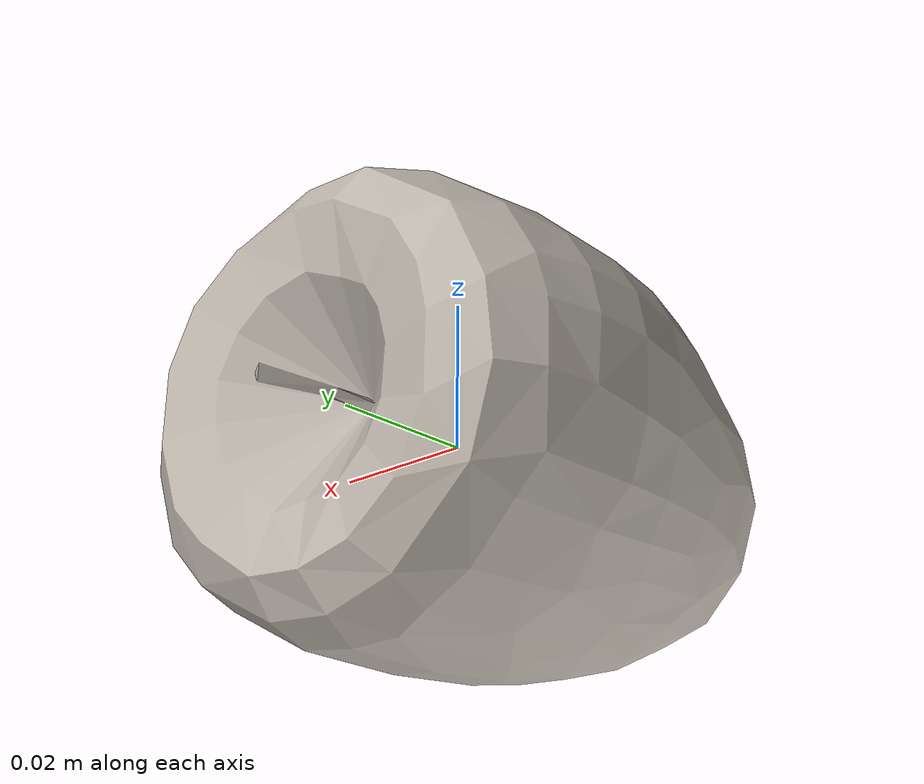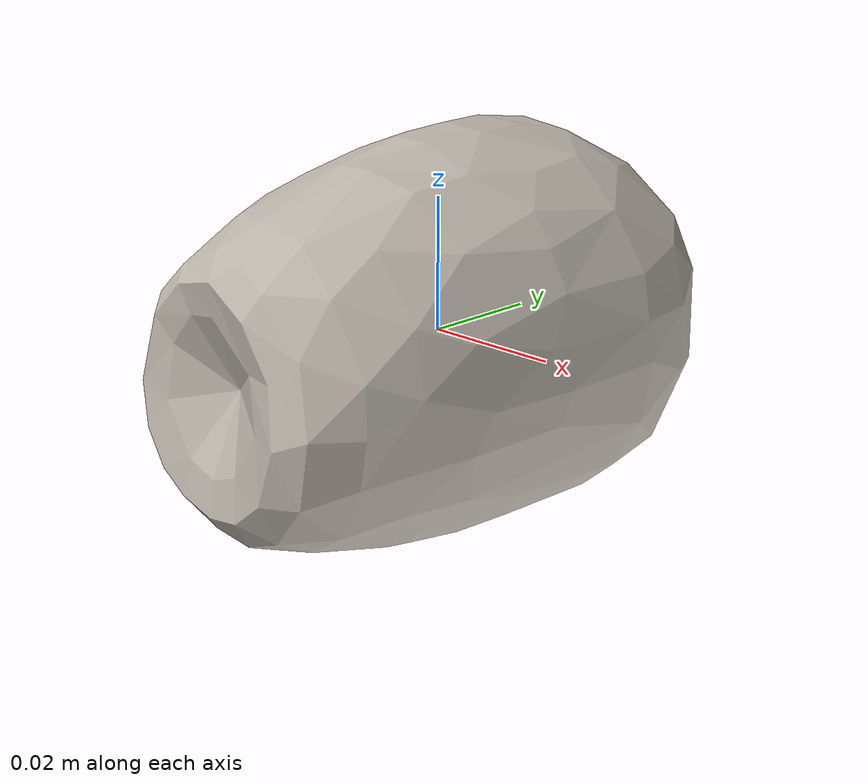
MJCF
<mujoco model="Apple_29">
  <compiler autolimits="true" boundmass="0.01" angle="radian"/>
  <default>
    <default class="/">
      <default class="__VISUAL_MJT__">
        <geom contype="0" conaffinity="0" group="0"/>
      </default>
      <default class="__STRUCTURAL_MJT__">
        <geom contype="8" conaffinity="15" group="4" friction="0.90000000000000002 0.90000000000000002 0.001" solref="0.025000000000000001 1" solimp="0.998 0.998 0.001"/>
      </default>
      <default class="__DYNAMIC_MJT__">
        <geom contype="1" conaffinity="15" group="4" friction="0.90000000000000002 0.90000000000000002 0.001" solref="0.025000000000000001 1" solimp="0.998 0.998 0.001"/>
      </default>
    </default>
  </default>
  <asset>
    <texture name="Apple2_Mat2" type="2d" file="Apple2_AlbedoTransparency2.png"/>
    <material name="material_Apple2_Mat2" class="/" texture="Apple2_Mat2" specular="0.5" shininess="0.5" rgba="1 1 1 1"/>
    <mesh name="Apple_29_apple_b14" class="/" file="Apple_29_apple_b14/Apple_29_apple_b14.obj" scale="1 1 1"/>
  </asset>
  <worldbody>
    <body name="Apple_29">
      <joint name="Apple_29_free" class="/" type="free" pos="0 0 0" axis="0 0 1" stiffness="0" range="0 0" armature="0" damping="0.10000000000000001" frictionloss="0"/>
      <body name="Apple_29_apple_b14" pos="-0.00079000000000000001 0.00314 -0.00087000000000000001" quat="1 0 0 0">
        <geom name="Apple_29_apple_b14" class="__VISUAL_MJT__" type="mesh" material="material_Apple2_Mat2" shellinertia="false" mesh="Apple_29_apple_b14"/>
        <geom name="Apple_29_PrimitiveCollider_0" class="__DYNAMIC_MJT__" type="capsule" size="0.031239118427038193 0.013018883764743805" rgba="0 1 0 1" pos="-0.00078884139657020569 -0.0031449757516384125 0.0008712373673915863" quat="0.70710678118654757 0.70710678118654746 0 0"/>
      </body>
    </body>
  </worldbody>
</mujoco>
